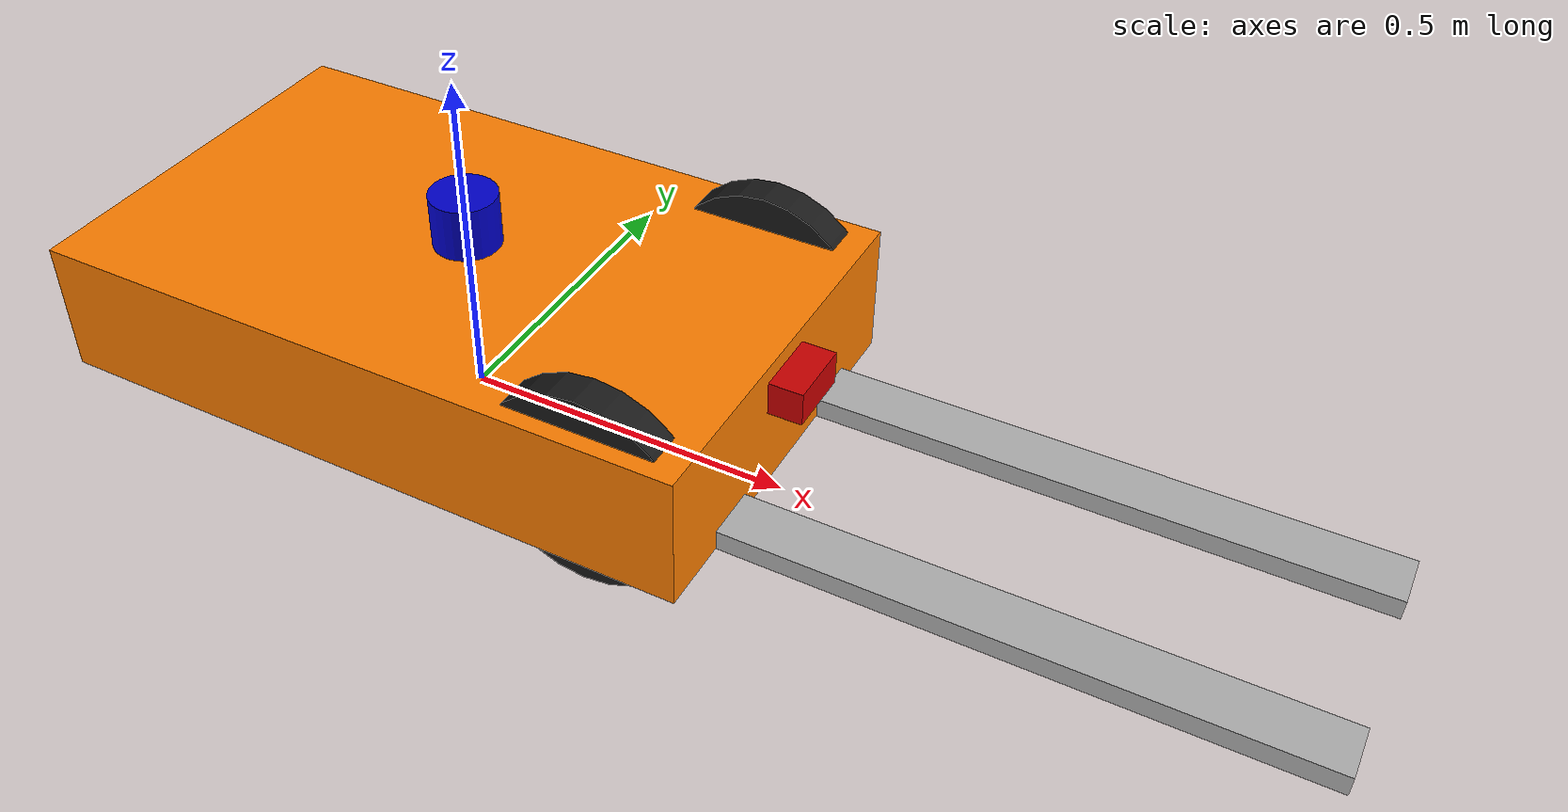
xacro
<?xml version="1.0"?>
<robot xmlns:xacro="http://www.ros.org/wiki/xacro" name="forklift">

  <!-- ==================== PROPERTIES ==================== -->
  <xacro:property name="chassis_length" value="1.0"/>
  <xacro:property name="chassis_width" value="0.6"/>
  <xacro:property name="chassis_height" value="0.2"/>
  <xacro:property name="chassis_mass" value="10.0"/>

  <xacro:property name="wheel_radius" value="0.15"/>
  <xacro:property name="wheel_width" value="0.05"/>
  <xacro:property name="wheel_mass" value="2.0"/>
  <xacro:property name="wheel_separation" value="0.5"/>

  <xacro:property name="caster_radius" value="0.05"/>
  <xacro:property name="caster_mass" value="0.5"/>

  <xacro:property name="lidar_radius" value="0.05"/>
  <xacro:property name="lidar_height" value="0.08"/>
  <xacro:property name="lidar_mass" value="0.3"/>

  <xacro:property name="camera_size" value="0.05"/>
  <xacro:property name="camera_mass" value="0.1"/>

  <xacro:property name="fork_length" value="0.8"/>
  <xacro:property name="fork_width" value="0.08"/>
  <xacro:property name="fork_height" value="0.03"/>
  <xacro:property name="fork_separation" value="0.3"/>

  <!-- ==================== INERTIA MACROS ==================== -->
  <xacro:macro name="box_inertia" params="m x y z">
    <inertial>
      <mass value="${m}"/>
      <inertia ixx="${(m/12)*(y*y+z*z)}" ixy="0" ixz="0"
               iyy="${(m/12)*(x*x+z*z)}" iyz="0"
               izz="${(m/12)*(x*x+y*y)}"/>
    </inertial>
  </xacro:macro>

  <xacro:macro name="cylinder_inertia" params="m r h">
    <inertial>
      <mass value="${m}"/>
      <inertia ixx="${(m/12)*(3*r*r+h*h)}" ixy="0" ixz="0"
               iyy="${(m/12)*(3*r*r+h*h)}" iyz="0"
               izz="${(m/2)*r*r}"/>
    </inertial>
  </xacro:macro>

  <xacro:macro name="sphere_inertia" params="m r">
    <inertial>
      <mass value="${m}"/>
      <inertia ixx="${(2/5)*m*r*r}" ixy="0" ixz="0"
               iyy="${(2/5)*m*r*r}" iyz="0"
               izz="${(2/5)*m*r*r}"/>
    </inertial>
  </xacro:macro>

  <!-- ==================== BASE LINK ==================== -->
  <link name="base_footprint"/>

  <joint name="base_joint" type="fixed">
    <parent link="base_footprint"/>
    <child link="base_link"/>
    <origin xyz="0 0 ${wheel_radius}" rpy="0 0 0"/>
  </joint>

  <link name="base_link">
    <visual>
      <geometry>
        <box size="${chassis_length} ${chassis_width} ${chassis_height}"/>
      </geometry>
      <material name="orange">
        <color rgba="1.0 0.5 0.0 1.0"/>
      </material>
    </visual>
    <collision>
      <geometry>
        <box size="${chassis_length} ${chassis_width} ${chassis_height}"/>
      </geometry>
    </collision>
    <xacro:box_inertia m="${chassis_mass}" x="${chassis_length}" y="${chassis_width}" z="${chassis_height}"/>
  </link>

  <!-- ==================== DRIVE WHEELS (FRONT) ==================== -->
  <xacro:macro name="drive_wheel" params="prefix y_offset">
    <link name="${prefix}_wheel_link">
      <visual>
        <geometry>
          <cylinder radius="${wheel_radius}" length="${wheel_width}"/>
        </geometry>
        <material name="black">
          <color rgba="0.1 0.1 0.1 1.0"/>
        </material>
      </visual>
      <collision>
        <geometry>
          <cylinder radius="${wheel_radius}" length="${wheel_width}"/>
        </geometry>
      </collision>
      <xacro:cylinder_inertia m="${wheel_mass}" r="${wheel_radius}" h="${wheel_width}"/>
    </link>

    <joint name="${prefix}_wheel_joint" type="continuous">
      <parent link="base_link"/>
      <child link="${prefix}_wheel_link"/>
      <origin xyz="${chassis_length/2 - wheel_radius} ${y_offset} 0" rpy="${-pi/2} 0 0"/>
      <axis xyz="0 0 1"/>
      <limit effort="1000.0" velocity="20.0"/>
    </joint>
  </xacro:macro>

  <xacro:drive_wheel prefix="left" y_offset="${wheel_separation/2}"/>
  <xacro:drive_wheel prefix="right" y_offset="${-wheel_separation/2}"/>

  <!-- ==================== CASTER WHEEL (REAR) ==================== -->
  <link name="caster_wheel_link">
    <visual>
      <geometry>
        <sphere radius="${caster_radius}"/>
      </geometry>
      <material name="gray">
        <color rgba="0.5 0.5 0.5 1.0"/>
      </material>
    </visual>
    <collision>
      <geometry>
        <sphere radius="${caster_radius}"/>
      </geometry>
    </collision>
    <xacro:sphere_inertia m="${caster_mass}" r="${caster_radius}"/>
  </link>

  <joint name="caster_wheel_joint" type="fixed">
    <parent link="base_link"/>
    <child link="caster_wheel_link"/>
    <origin xyz="${-chassis_length/2 + caster_radius} 0 ${-wheel_radius + caster_radius}" rpy="0 0 0"/>
  </joint>

  <!-- ==================== LIDAR ==================== -->
  <link name="lidar_link">
    <visual>
      <geometry>
        <cylinder radius="${lidar_radius}" length="${lidar_height}"/>
      </geometry>
      <material name="blue">
        <color rgba="0.0 0.0 0.8 1.0"/>
      </material>
    </visual>
    <collision>
      <geometry>
        <cylinder radius="${lidar_radius}" length="${lidar_height}"/>
      </geometry>
    </collision>
    <xacro:cylinder_inertia m="${lidar_mass}" r="${lidar_radius}" h="${lidar_height}"/>
  </link>

  <joint name="lidar_joint" type="fixed">
    <parent link="base_link"/>
    <child link="lidar_link"/>
    <origin xyz="0 0 ${chassis_height/2 + lidar_height/2}" rpy="0 0 0"/>
  </joint>

  <!-- ==================== CAMERA ==================== -->
  <link name="camera_link">
    <visual>
      <geometry>
        <box size="${camera_size} ${camera_size*2} ${camera_size}"/>
      </geometry>
      <material name="red">
        <color rgba="0.8 0.0 0.0 1.0"/>
      </material>
    </visual>
    <collision>
      <geometry>
        <box size="${camera_size} ${camera_size*2} ${camera_size}"/>
      </geometry>
    </collision>
    <xacro:box_inertia m="${camera_mass}" x="${camera_size}" y="${camera_size*2}" z="${camera_size}"/>
  </link>

  <joint name="camera_joint" type="fixed">
    <parent link="base_link"/>
    <child link="camera_link"/>
    <origin xyz="${chassis_length/2 + camera_size/2} 0 ${chassis_height/4}" rpy="0 0 0"/>
  </joint>

  <link name="camera_optical_frame"/>
  <joint name="camera_optical_joint" type="fixed">
    <parent link="camera_link"/>
    <child link="camera_optical_frame"/>
    <origin xyz="0 0 0" rpy="${-pi/2} 0 ${-pi/2}"/>
  </joint>

  <!-- ==================== FORKS (VISUAL ONLY) ==================== -->
  <xacro:macro name="fork" params="prefix y_offset">
    <link name="${prefix}_fork_link">
      <visual>
        <geometry>
          <box size="${fork_length} ${fork_width} ${fork_height}"/>
        </geometry>
        <material name="silver">
          <color rgba="0.7 0.7 0.7 1.0"/>
        </material>
      </visual>
      <collision>
        <geometry>
          <box size="${fork_length} ${fork_width} ${fork_height}"/>
        </geometry>
      </collision>
      <xacro:box_inertia m="1.0" x="${fork_length}" y="${fork_width}" z="${fork_height}"/>
    </link>

    <joint name="${prefix}_fork_joint" type="fixed">
      <parent link="base_link"/>
      <child link="${prefix}_fork_link"/>
      <origin xyz="${chassis_length/2 + fork_length/2} ${y_offset} ${-chassis_height/2 + fork_height/2}" rpy="0 0 0"/>
    </joint>
  </xacro:macro>

  <xacro:fork prefix="left" y_offset="${fork_separation/2}"/>
  <xacro:fork prefix="right" y_offset="${-fork_separation/2}"/>

  <!-- ==================== GAZEBO PLUGINS ==================== -->

  <!-- Differential Drive Controller -->
  <gazebo>
    <plugin filename="gz-sim-diff-drive-system" name="gz::sim::systems::DiffDrive">
      <left_joint>left_wheel_joint</left_joint>
      <right_joint>right_wheel_joint</right_joint>
      <wheel_separation>${wheel_separation}</wheel_separation>
      <wheel_radius>${wheel_radius}</wheel_radius>
      <odom_publish_frequency>50</odom_publish_frequency>
      <max_linear_acceleration>4.0</max_linear_acceleration>
      <min_linear_acceleration>-4.0</min_linear_acceleration>
      <max_angular_acceleration>4.0</max_angular_acceleration>
      <min_angular_acceleration>-4.0</min_angular_acceleration>
      <max_linear_velocity>10.0</max_linear_velocity>
      <min_linear_velocity>-10.0</min_linear_velocity>
      <max_angular_velocity>10.0</max_angular_velocity>
      <min_angular_velocity>-10.0</min_angular_velocity>
      <topic>/cmd_vel</topic>
      <odom_topic>odom</odom_topic>
      <tf_topic>tf</tf_topic>
      <frame_id>odom</frame_id>
      <child_frame_id>base_footprint</child_frame_id>
    </plugin>
  </gazebo>

  <!-- Joint State Publisher -->
  <gazebo>
    <plugin filename="gz-sim-joint-state-publisher-system" name="gz::sim::systems::JointStatePublisher">
      <topic>joint_states</topic>
      <joint_name>left_wheel_joint</joint_name>
      <joint_name>right_wheel_joint</joint_name>
    </plugin>
  </gazebo>

  <!-- Sensors Plugin -->
  <gazebo>
    <plugin filename="gz-sim-sensors-system" name="gz::sim::systems::Sensors">
      <render_engine>ogre2</render_engine>
    </plugin>
  </gazebo>

  <!-- Lidar Sensor -->
  <gazebo reference="lidar_link">
    <sensor name="lidar" type="gpu_lidar">
      <topic>scan</topic>
      <update_rate>5</update_rate>
      <lidar>
        <scan>
          <horizontal>
            <samples>360</samples>
            <resolution>1</resolution>
            <min_angle>-3.14159</min_angle>
            <max_angle>3.14159</max_angle>
          </horizontal>
        </scan>
        <range>
          <min>0.1</min>
          <max>12.0</max>
          <resolution>0.01</resolution>
        </range>
      </lidar>
      <always_on>true</always_on>
      <visualize>false</visualize>
    </sensor>
  </gazebo>

  <!-- Camera Sensor -->
  <gazebo reference="camera_link">
    <sensor name="camera" type="camera">
      <topic>/camera_sensor/image_raw</topic>
      <update_rate>5</update_rate>
      <camera>
        <horizontal_fov>1.047</horizontal_fov>
        <image>
          <width>320</width>
          <height>240</height>
          <format>R8G8B8</format>
        </image>
        <clip>
          <near>0.1</near>
          <far>100</far>
        </clip>
      </camera>
      <always_on>true</always_on>
      <visualize>false</visualize>
    </sensor>
  </gazebo>

  <!-- Headlight (Spotlight) -->
  <gazebo reference="camera_link">
    <light name="headlight" type="spot">
      <pose>0 0 0 0 0 0</pose>
      <diffuse>1 1 1 1</diffuse>
      <specular>1 1 1 1</specular>
      <direction>1 0 0</direction>
      <attenuation>
        <range>20</range>
        <constant>0.5</constant>
        <linear>0.01</linear>
        <quadratic>0.001</quadratic>
      </attenuation>
      <spot>
        <inner_angle>0.6</inner_angle>
        <outer_angle>1.0</outer_angle>
        <falloff>1.0</falloff>
      </spot>
      <cast_shadows>true</cast_shadows>
    </light>
  </gazebo>

  <!-- Caster wheel friction (frictionless for smooth movement) -->
  <gazebo reference="caster_wheel_link">
    <mu1>0.0</mu1>
    <mu2>0.0</mu2>
  </gazebo>

  <gazebo reference="left_wheel_link">
    <mu1>1.0</mu1>
    <mu2>1.0</mu2>
  </gazebo>

  <gazebo reference="right_wheel_link">
    <mu1>1.0</mu1>
    <mu2>1.0</mu2>
  </gazebo>

</robot>
